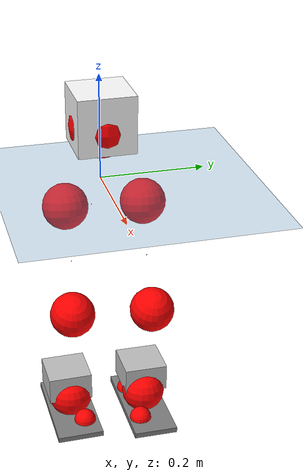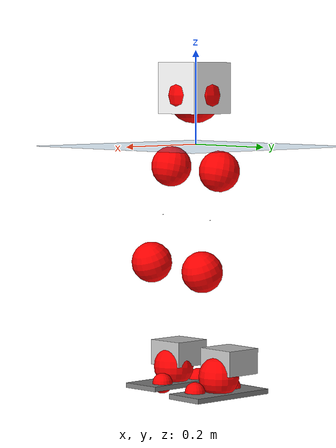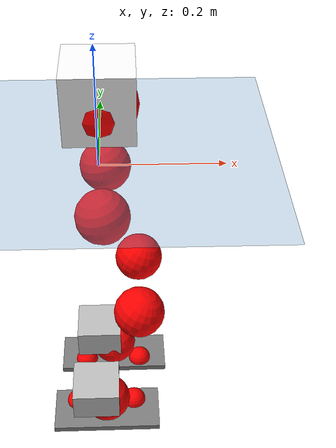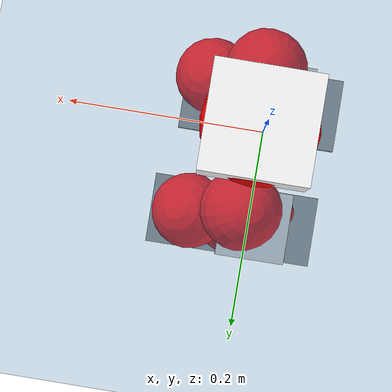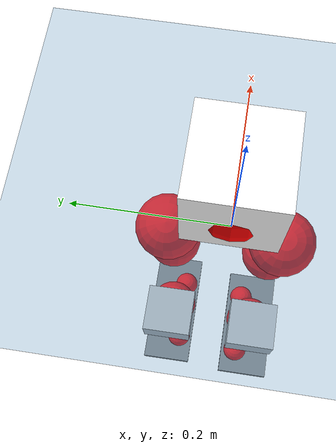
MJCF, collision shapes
<mujoco model="pi_12dof_release_v1">
  <compiler angle="radian" assetdir="assets" balanceinertia="true" inertiafromgeom="false"/>

  <option timestep="0.005" density="1.2" viscosity="2e-05"/>

  <size nkey="1"/>

  <visual>
    <quality shadowsize="8192"/>
    <map shadowclip="0.5"/>
  </visual>

  <default>
    <default class="/">
      <joint armature="0.01" damping="0.01" frictionloss="0.01"/>
      <geom contype="0" conaffinity="0" group="1" solref="-1000 -80"/>
      <site size="0.01 0.005 0.005" group="5"/>
      <general forcelimited="true" biastype="affine" gainprm="20" biasprm="0 -20 -0.5"/>
      <default class="foot">
        <geom size="0.0845 0.036 0.005" type="box" condim="6" group="4" priority="1" friction="0.9 0.2 0.2" solimp="0.015 1 0.005"/>
      </default>
      <default class="reward_collision_sphere">
        <geom group="5" rgba="1 0 0 1"/>
      </default>
    </default>
  </default>

  <asset>
    <texture type="skybox" colorspace="auto" name="//unnamed_texture_0" builtin="gradient" rgb1="0.95 0.95 0.95" rgb2="0.95 0.95 0.95" width="100" height="600"/>
    <texture type="2d" colorspace="auto" name="texplane" builtin="checker" rgb1="0.345 0.575 0.748" rgb2="0.345 0.575 0.748" markrgb="1 1 1" width="512" height="512"/>
    <material name="MatPlane" class="/" texture="texplane" texuniform="true" texrepeat="2 2" specular="0.9"/>
    <mesh name="baselink_1" class="/" file="baselink_1.STL"/>
    <mesh name="r_hip_pitch_link" class="/" file="r_hip_pitch_link.STL"/>
    <mesh name="r_hip_roll_link" class="/" file="r_hip_roll_link.STL"/>
    <mesh name="r_thigh_link" class="/" file="r_thigh_link.STL"/>
    <mesh name="r_calf_link" class="/" file="r_calf_link.STL"/>
    <mesh name="r_ankle_pitch_link" class="/" file="r_ankle_pitch_link.STL"/>
    <mesh name="r_ankle_roll_link" class="/" file="r_ankle_roll_link.STL"/>
    <mesh name="l_hip_pitch_link" class="/" file="l_hip_pitch_link.STL"/>
    <mesh name="l_hip_roll_link" class="/" file="l_hip_roll_link.STL"/>
    <mesh name="l_thigh_link" class="/" file="l_thigh_link.STL"/>
    <mesh name="l_calf_link" class="/" file="l_calf_link.STL"/>
    <mesh name="l_ankle_pitch_link" class="/" file="l_ankle_pitch_link.STL"/>
    <mesh name="l_ankle_roll_link" class="/" file="l_ankle_roll_link.STL"/>
  </asset>

  <worldbody>
    <geom name="floor" class="/" size="100 100 0.125" type="plane" group="0" material="MatPlane"/>
    <light name="toplight_shadow" class="/" pos="0 0 5" dir="0.0990148 0.0990148 -0.990148" type="directional" ambient="0.04 0.04 0.04" diffuse="0.55 0.55 0.55" specular="0.12 0.12 0.12"/>
    <light name="toplight_fill" class="/" pos="0 0 5" dir="0.0990148 0.0990148 -0.990148" type="directional" castshadow="false" ambient="0.04 0.04 0.04" diffuse="0.3 0.3 0.3" specular="0.08 0.08 0.08"/>
    <body name="trunk" pos="0.00555156 0.00172278 -0.00130396" quat="0.999999 0.000459853 -0.00148488 -5.59544e-05">
      <inertial pos="0.00814041 -0.00386108 0.0605713" quat="0.691301 0.0106665 0.00557245 0.722466" mass="2.82136" diaginertia="0.00302011 0.00677654 0.0319382"/>
      <joint name="//unnamed_joint_0" type="free"/>
      <geom name="//unnamed_geom_1" class="/" type="mesh" density="0" rgba="1 1 1 1" mesh="baselink_1"/>
      <geom name="//unnamed_geom_2" class="/" size="0.0542593 0.0542593 0.0542593" pos="0 0 0.121581" type="box" rgba="1 1 1 1"/>
      <geom name="//unnamed_geom_3" class="reward_collision_sphere" size="0.0596852" pos="0 0 0.106384"/>
      <site name="imu" class="/" pos="0.00309921 0.00760517 -0.0105339" size="0.0108519"/>
      <camera name="track" class="/" pos="0 -1.88165 0" quat="0.707107 0.707107 0 0" mode="trackcom"/>
      <camera name="ego_camera" class="/" pos="0.0596226 0 0.273558" quat="-0.5 -0.5 0.5 0.5"/>
      <body name="r_hip_pitch_link" pos="0.000665797 -0.0209631 -0.048591" quat="0.992079 0.00242804 -0.12559 -0.000951408">
        <inertial pos="0.00718387 -0.052266 -0.000455998" quat="-0.0190743 0.710067 -0.0310427 0.70319" mass="0.436646" diaginertia="3.17817e-05 7.2913e-05 0.000639002"/>
        <joint name="r_hip_pitch_joint" class="/" pos="0 0 0" axis="0.00790451 -0.999969 -0.000702925" stiffness="0.0300351" range="-1.73846 1.28658" armature="0.0108647" damping="0.0297332" frictionloss="0.0098336"/>
        <geom name="//unnamed_geom_4" class="/" type="mesh" density="0" rgba="0.75294 0.75294 0.75294 1" mesh="r_hip_pitch_link"/>
        <geom name="//unnamed_geom_5" class="/" size="0.000542593 0.000542593 0.000542593" type="box" rgba="0.75294 0.75294 0.75294 1"/>
        <body name="r_hip_roll_link" pos="7.33574e-05 -0.0496221 0.00181214" quat="1 -9.47013e-06 -3.51439e-05 5.12393e-05">
          <inertial pos="-0.00698651 0.00195122 -0.0967969" quat="0.702312 -0.0829326 -0.087847 0.701543" mass="0.479432" diaginertia="0.000102901 0.000209025 0.00101647"/>
          <joint name="r_hip_roll_joint" class="/" pos="0 0 0" axis="-0.999998 -0.00212163 0.000319346" range="-0.0539874 0.500972" armature="0.0135114" damping="0.0181648" frictionloss="0.0112826"/>
          <geom name="//unnamed_geom_6" class="/" type="mesh" density="0" rgba="0.75294 0.75294 0.75294 1" mesh="r_hip_roll_link"/>
          <geom name="//unnamed_geom_7" class="/" size="0.000542593 0.000542593 0.000542593" type="box" rgba="0.75294 0.75294 0.75294 1"/>
          <geom name="//unnamed_geom_8" class="reward_collision_sphere" size="0.0434074"/>
          <body name="r_thigh_link" pos="0.00125408 0.00288064 -0.105947" quat="1 -0.000245342 -0.000599298 -6.19172e-05">
            <inertial pos="-0.000502104 0.00124475 -0.0699543" quat="0.74586 0.665906 0.0100937 0.0126594" mass="0.148329" diaginertia="3.89406e-05 7.02911e-05 0.000479142"/>
            <joint name="r_thigh_joint" class="/" pos="0 0 0" axis="0.0063103 -0.012884 -0.999897" stiffness="0.029824" range="-0.294204 0.571892" armature="0.0130275" damping="0.0128505" frictionloss="0.0101007"/>
            <geom name="//unnamed_geom_9" class="/" type="mesh" density="0" rgba="0.75294 0.75294 0.75294 1" mesh="r_thigh_link"/>
            <geom name="//unnamed_geom_10" class="/" size="0.000542593 0.000542593 0.000542593" type="box" rgba="0.75294 0.75294 0.75294 1"/>
            <body name="r_calf_link" pos="0.00116171 -0.00647214 -0.104805" quat="0.947544 0.00014311 0.319625 3.26793e-05">
              <inertial pos="-0.00307414 0.00128198 -0.106287" quat="0.999994 -0.00239401 0.00259773 -0.000331558" mass="0.922833" diaginertia="0.00106318 0.00245277 0.00140263"/>
              <joint name="r_calf_joint" class="/" pos="0 0 0" axis="-0.00220504 -0.999991 -0.00356049" range="-1.6748 0.72686" armature="0.00694043" damping="0.0288895" frictionloss="0.00734633"/>
              <geom name="//unnamed_geom_11" class="/" type="mesh" density="0" rgba="0.75294 0.75294 0.75294 1" mesh="r_calf_link"/>
              <geom name="//unnamed_geom_12" class="/" size="0.000542593 0.000542593 0.000542593" type="box" rgba="0.75294 0.75294 0.75294 1"/>
              <geom name="//unnamed_geom_13" class="reward_collision_sphere" size="0.0434074"/>
              <body name="r_ankle_pitch_link" pos="0.00291755 -0.00178014 -0.216977" quat="0.980279 -0.000124523 -0.197607 0.00234119">
                <inertial pos="0.00571427 0.00959188 -0.00214939" quat="0.00950407 0.701242 -0.00473409 0.712844" mass="0.238574" diaginertia="9.53355e-05 0.00015852 0.00098864"/>
                <joint name="r_ankle_pitch_joint" class="/" pos="0 0 0" axis="-4.49524e-05 -0.999517 0.0310806" stiffness="0.0269974" range="-1.23608 0.44877" armature="0.00958181" damping="0.00460784" frictionloss="0.0116645"/>
                <geom name="//unnamed_geom_14" class="/" type="mesh" density="0" rgba="0.75294 0.75294 0.75294 1" mesh="r_ankle_pitch_link"/>
                <geom name="//unnamed_geom_15" class="/" size="0.0423222 0.0434074 0.0271296" type="box" rgba="0.75294 0.75294 0.75294 1"/>
                <body name="r_ankle_roll_link" pos="0.0583938 0.00307674 0.00171452" quat="1 -0.000163774 7.87765e-05 2.05143e-05">
                  <inertial pos="-0.0187836 0.000363965 -0.0240297" quat="0.552784 0.439327 0.43314 0.560189" mass="0.652532" diaginertia="0.000328523 0.000747019 0.00223219"/>
                  <joint name="r_ankle_roll_joint" class="/" pos="0 0 0" axis="-0.999294 -0.0367623 0.00777508" stiffness="0.00606812" range="-0.187206 0.220378" armature="0.0122569" damping="0.0112652" frictionloss="0.0109187"/>
                  <geom name="//unnamed_geom_16" class="/" type="mesh" density="0" rgba="0.75294 0.75294 0.75294 1" mesh="r_ankle_roll_link"/>
                  <geom name="//unnamed_geom_17" class="/" type="mesh" rgba="0.75294 0.75294 0.75294 1" mesh="r_ankle_roll_link"/>
                  <geom name="right_foot" class="foot" size="0.0994694 0.0454997 0.00523175" pos="-0.0405433 0 -0.0668697"/>
                  <geom name="//unnamed_geom_19" class="reward_collision_sphere" size="0.0434074" pos="-0.0397484 0 -0.0303953"/>
                  <geom name="//unnamed_geom_20" class="reward_collision_sphere" size="0.0217037" pos="0.0119245 0.0188165 -0.0607906"/>
                  <geom name="//unnamed_geom_21" class="reward_collision_sphere" size="0.0217037" pos="-0.0953961 0.0188165 -0.0607906"/>
                  <site name="right_foot" class="foot" pos="-0.0405433 0 -0.0668697" size="0.0108519"/>
                </body>
              </body>
            </body>
          </body>
        </body>
      </body>
      <body name="l_hip_pitch_link" pos="-0.00231032 0.0244083 -0.0509567" quat="0.992045 -0.00304421 -0.125835 0.00171021">
        <inertial pos="-0.0048762 0.0482931 0.000788901" quat="-0.0396483 0.705616 0.0300247 0.706847" mass="0.519981" diaginertia="4.15097e-05 7.65454e-05 0.000806202"/>
        <joint name="l_hip_pitch_joint" class="/" pos="0 0 0" axis="-0.00203328 0.99993 0.0116227" range="-1.25514 1.76666" armature="0.00948239" damping="0.0172289" frictionloss="0.0114228"/>
        <geom name="//unnamed_geom_22" class="/" type="mesh" density="0" rgba="0.75294 0.75294 0.75294 1" mesh="l_hip_pitch_link"/>
        <geom name="//unnamed_geom_23" class="/" size="0.000542593 0.000542593 0.000542593" type="box" rgba="0.75294 0.75294 0.75294 1"/>
        <body name="l_hip_roll_link" pos="0.00490702 0.0537762 -0.0024714" quat="0.999997 -0.0019334 -0.000805386 0.0014695">
          <inertial pos="-0.00142788 -0.00154014 -0.0951526" quat="0.702383 -0.0944666 -0.0768604 0.701304" mass="0.517859" diaginertia="0.000108432 0.000211517 0.00106391"/>
          <joint name="l_hip_roll_joint" class="/" pos="0 0 0" axis="-0.999996 0.00263085 -0.000529786" range="-0.539958 0.0886246" armature="0.00944741" damping="0.0388133" frictionloss="0.0110579"/>
          <geom name="//unnamed_geom_24" class="/" type="mesh" density="0" rgba="0.75294 0.75294 0.75294 1" mesh="l_hip_roll_link"/>
          <geom name="//unnamed_geom_25" class="/" size="0.000542593 0.000542593 0.000542593" type="box" rgba="0.75294 0.75294 0.75294 1"/>
          <geom name="//unnamed_geom_26" class="reward_collision_sphere" size="0.0434074"/>
          <body name="l_thigh_link" pos="0.00131014 0.00194121 -0.105382" quat="1 0.000658624 0.000229704 -0.000263973">
            <inertial pos="-0.000310254 -0.00167563 -0.0726094" quat="0.676168 0.736741 -0.00289504 0.00112112" mass="0.142837" diaginertia="3.9783e-05 7.01104e-05 0.000458857"/>
            <joint name="l_thigh_joint" class="/" pos="0 0 0" axis="0.000125387 0.0110258 -0.999939" range="-0.608613 0.245856" armature="0.0109118" damping="0.00213939" frictionloss="0.00963106"/>
            <geom name="//unnamed_geom_27" class="/" type="mesh" density="0" rgba="0.75294 0.75294 0.75294 1" mesh="l_thigh_link"/>
            <geom name="//unnamed_geom_28" class="/" size="0.000542593 0.000542593 0.000542593" type="box" rgba="0.75294 0.75294 0.75294 1"/>
            <body name="l_calf_link" pos="-0.000590172 0.00498742 -0.110051" quat="0.947357 -7.44525e-06 0.320178 0.000254304">
              <inertial pos="0.000377817 0.000692735 -0.10589" quat="0.999825 -0.0100592 -0.0129724 -0.00897727" mass="1.03986" diaginertia="0.00110835 0.00254009 0.00138864"/>
              <joint name="l_calf_joint" class="/" pos="0 0 0" axis="-0.0163163 0.999864 -0.0022894" range="-0.697082 1.69827" armature="0.01401" damping="0" frictionloss="0.00773639"/>
              <geom name="//unnamed_geom_29" class="/" type="mesh" density="0" rgba="0.75294 0.75294 0.75294 1" mesh="l_calf_link"/>
              <geom name="//unnamed_geom_30" class="/" size="0.000542593 0.000542593 0.000542593" type="box" rgba="0.75294 0.75294 0.75294 1"/>
              <geom name="//unnamed_geom_31" class="reward_collision_sphere" size="0.0434074"/>
              <body name="l_ankle_pitch_link" pos="0.00119933 0.00247139 -0.209679" quat="0.980002 7.20918e-05 -0.198986 -0.000236374">
                <inertial pos="0.00390297 -0.0011673 0.000731077" quat="-0.00449551 0.705368 0.00233425 0.708823" mass="0.219337" diaginertia="9.45971e-05 0.000161638 0.00100823"/>
                <joint name="l_ankle_pitch_joint" class="/" pos="0 0 0" axis="0.0122488 0.999925 0.000921672" range="-0.562148 1.31299" armature="0.0106381" damping="0.00123048" frictionloss="0.011397"/>
                <geom name="//unnamed_geom_32" class="/" type="mesh" density="0" rgba="0.75294 0.75294 0.75294 1" mesh="l_ankle_pitch_link"/>
                <geom name="//unnamed_geom_33" class="/" size="0.0423222 0.0434074 0.0271296" type="box" rgba="0.75294 0.75294 0.75294 1"/>
                <body name="l_ankle_roll_link" pos="0.0673481 -0.00264683 -0.00164351" quat="0.999999 -0.00109714 -0.000700314 -9.18932e-05">
                  <inertial pos="-0.0257728 -0.00087916 -0.0220901" quat="0.564643 0.426683 0.432115 0.558924" mass="0.654742" diaginertia="0.000385172 0.000836955 0.00242456"/>
                  <joint name="l_ankle_roll_joint" class="/" pos="0 0 0" axis="-0.999893 0.00159331 -0.0145381" stiffness="0.00299247" range="-0.199148 0.154395" armature="0.0116913" damping="0.00724915" frictionloss="0.0120505"/>
                  <geom name="//unnamed_geom_34" class="/" type="mesh" density="0" rgba="0.75294 0.75294 0.75294 1" mesh="l_ankle_roll_link"/>
                  <geom name="//unnamed_geom_35" class="/" type="mesh" rgba="0.75294 0.75294 0.75294 1" mesh="l_ankle_roll_link"/>
                  <geom name="left_foot" class="foot" size="0.104351 0.0436127 0.00535755" pos="-0.0405433 0 -0.0668697"/>
                  <geom name="//unnamed_geom_37" class="reward_collision_sphere" size="0.0434074" pos="-0.0397484 0 -0.0303953"/>
                  <geom name="//unnamed_geom_38" class="reward_collision_sphere" size="0.0217037" pos="0.0119245 -0.0188165 -0.0607906"/>
                  <geom name="//unnamed_geom_39" class="reward_collision_sphere" size="0.0217037" pos="-0.0953961 -0.0188165 -0.0607906"/>
                  <site name="left_foot" class="foot" pos="-0.0405433 0 -0.0668697" size="0.0108519"/>
                </body>
              </body>
            </body>
          </body>
        </body>
      </body>
    </body>
  </worldbody>

  <contact>
    <pair class="/" geom1="floor" geom2="right_foot" name="//unnamed_contact_1"/>
    <pair class="/" geom1="floor" geom2="left_foot" name="//unnamed_contact_0"/>
  </contact>

  <actuator>
    <general name="r_hip_pitch_joint" class="/" joint="r_hip_pitch_joint" forcerange="-20.8983 20.8983" gainprm="22.9759" biasprm="0 -22.9759 -0.546856"/>
    <general name="r_hip_roll_joint" class="/" joint="r_hip_roll_joint" forcerange="-23.2515 23.2515" gainprm="22.9759" biasprm="0 -22.9759 -0.546856"/>
    <general name="r_thigh_joint" class="/" joint="r_thigh_joint" forcerange="-23.4305 23.4305" gainprm="22.9759" biasprm="0 -22.9759 -0.546856"/>
    <general name="r_calf_joint" class="/" joint="r_calf_joint" forcerange="-20.7261 20.7261" gainprm="22.9759" biasprm="0 -22.9759 -0.546856"/>
    <general name="r_ankle_pitch_joint" class="/" joint="r_ankle_pitch_joint" forcerange="-24.7982 24.7982" gainprm="22.9759" biasprm="0 -22.9759 -0.546856"/>
    <general name="r_ankle_roll_joint" class="/" joint="r_ankle_roll_joint" forcerange="-20.6965 20.6965" gainprm="22.9759" biasprm="0 -22.9759 -0.546856"/>
    <general name="l_hip_pitch_joint" class="/" joint="l_hip_pitch_joint" forcerange="-21.8402 21.8402" gainprm="22.9759" biasprm="0 -22.9759 -0.546856"/>
    <general name="l_hip_roll_joint" class="/" joint="l_hip_roll_joint" forcerange="-22.6903 22.6903" gainprm="22.9759" biasprm="0 -22.9759 -0.546856"/>
    <general name="l_thigh_joint" class="/" joint="l_thigh_joint" forcerange="-23.1021 23.1021" gainprm="22.9759" biasprm="0 -22.9759 -0.546856"/>
    <general name="l_calf_joint" class="/" joint="l_calf_joint" forcerange="-17.2052 17.2052" gainprm="22.9759" biasprm="0 -22.9759 -0.546856"/>
    <general name="l_ankle_pitch_joint" class="/" joint="l_ankle_pitch_joint" forcerange="-23.0249 23.0249" gainprm="22.9759" biasprm="0 -22.9759 -0.546856"/>
    <general name="l_ankle_roll_joint" class="/" joint="l_ankle_roll_joint" forcerange="-24.7325 24.7325" gainprm="22.9759" biasprm="0 -22.9759 -0.546856"/>
  </actuator>

  <sensor>
    <gyro site="imu" name="imu_angular_velocity"/>
    <velocimeter site="imu" name="imu_linear_velocity"/>
    <framelinvel objtype="site" objname="left_foot" name="left_foot_global_linear_velocity"/>
    <framelinvel objtype="site" objname="right_foot" name="right_foot_global_linear_velocity"/>
  </sensor>

  <keyframe>
    <key name="home" qpos="0 0 0.291 1 0 0 0 0.4 0 0 -0.8 0.4 0 -0.4 0 0 0.8 -0.4 0"/>
  </keyframe>
</mujoco>
